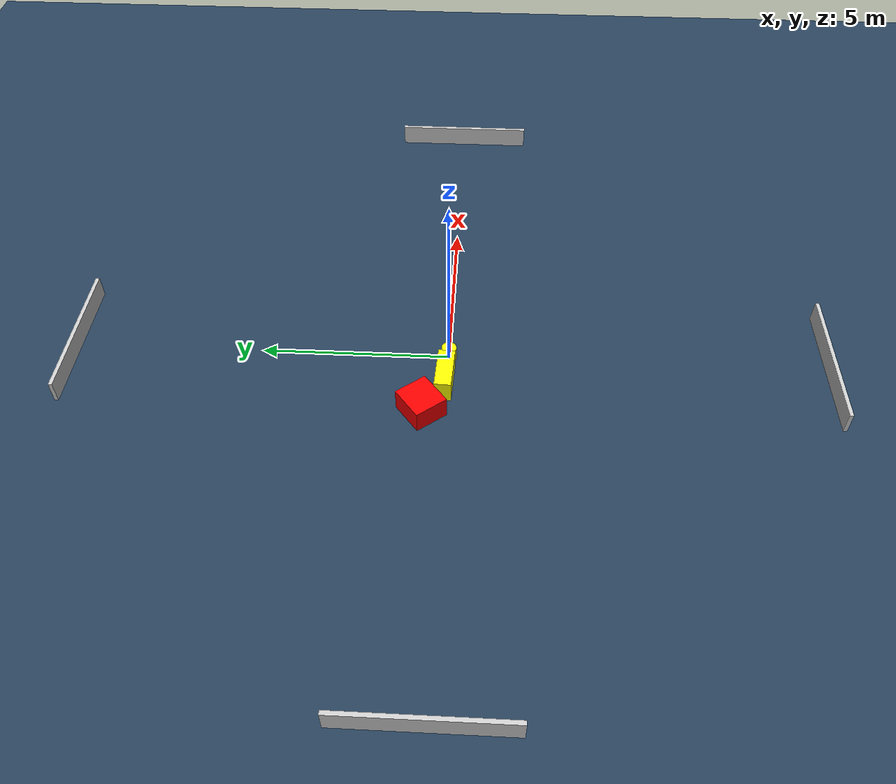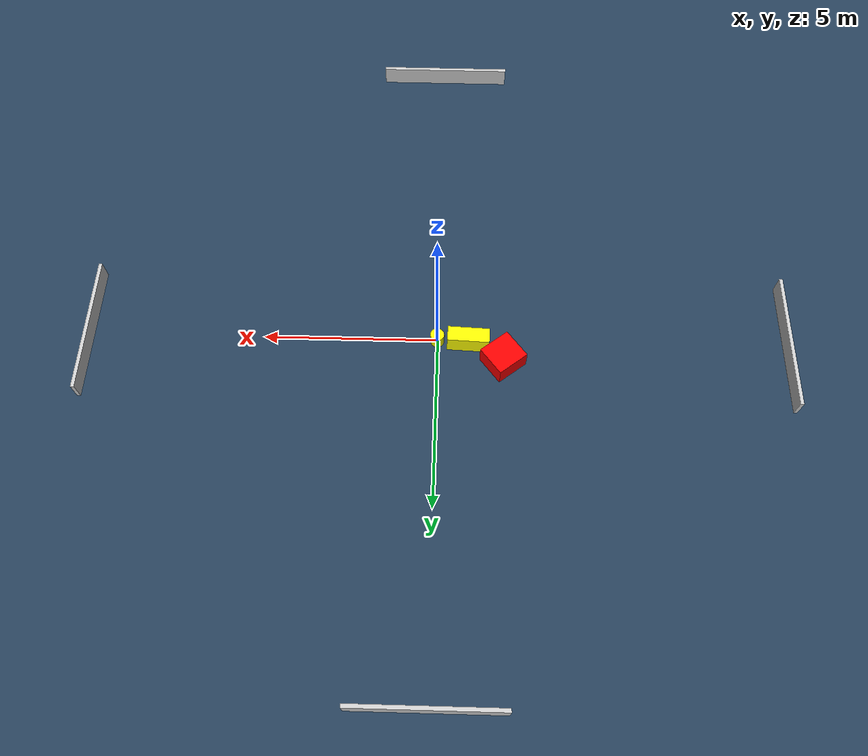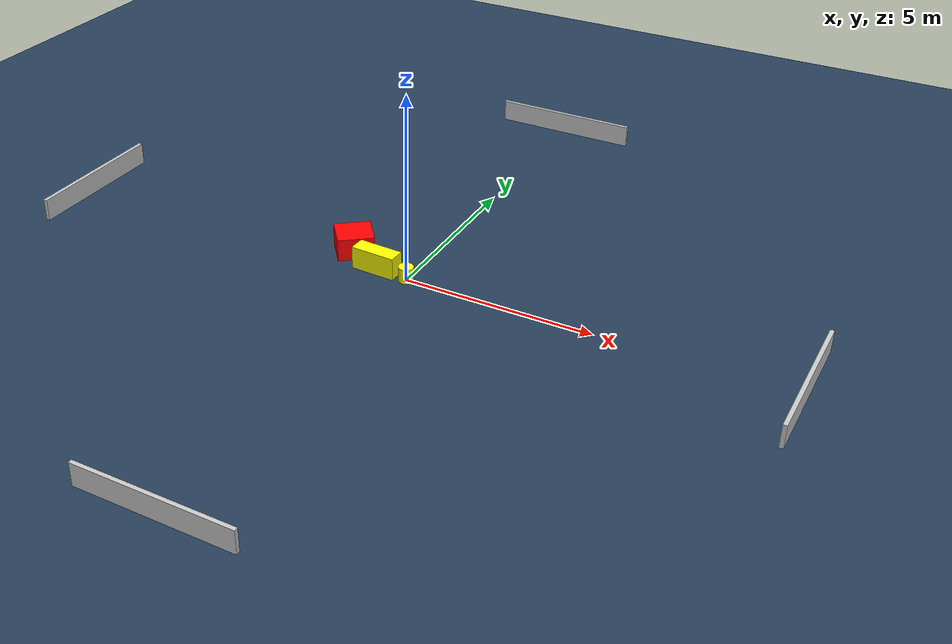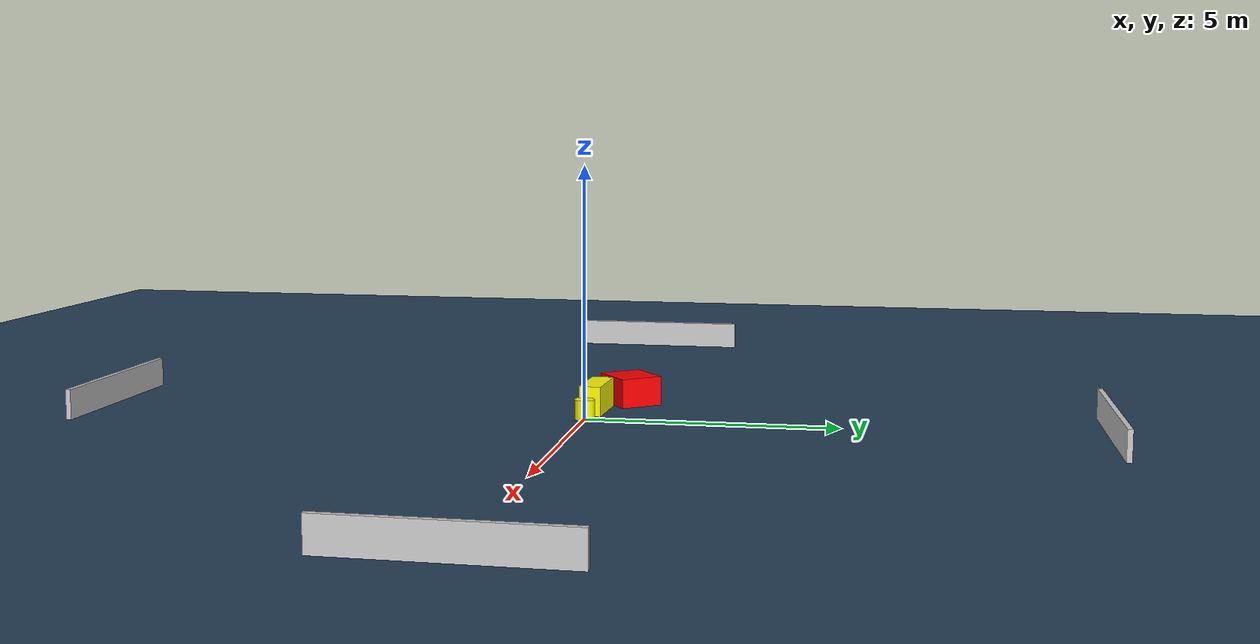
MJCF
<?xml version="1.0" ?>
<mujoco model="generated_environment">
  <option timestep="0.01" integrator="RK4" cone="elliptic"/>
  <default>
    <geom density="1"/>
  </default>
  <asset>
    <texture builtin="gradient" height="3072" name="skybox" rgb1="0.3 0.5 0.7" rgb2="0 0 0" type="skybox" width="512"/>
    <texture builtin="checker" height="300" name="groundplane" rgb1="0.2 0.3 0.4" rgb2="0.1 0.2 0.3" type="2d" width="300"/>
    <material name="groundplane" reflectance="0.2" texrepeat="5 5" texture="groundplane"/>
  </asset>
  <worldbody>
    <light dir="0 0 -1" directional="true" pos="0 0 1.5"/>
    <geom condim="3" friction="0.5 0.005 0.001" material="groundplane" name="floor" pos="0 0 0" size="0 0 0.05" type="plane"/>
    <body name="walls">
      <geom name="wall_1" condim="4" pos="-10.0 0.0 0.3" rgba="0.800000011920929 0.800000011920929 0.800000011920929 1.0" size="0.05 2.0 0.3" type="box"/>
      <geom name="wall_2" condim="4" pos="10.0 0.0 0.3" rgba="0.800000011920929 0.800000011920929 0.800000011920929 1.0" size="0.05 2.0 0.3" type="box"/>
      <geom name="wall_3" condim="4" pos="0.0 -10.0 0.3" rgba="0.800000011920929 0.800000011920929 0.800000011920929 1.0" size="2.0 0.05 0.3" type="box"/>
      <geom name="wall_4" condim="4" pos="0.0 10.0 0.3" rgba="0.800000011920929 0.800000011920929 0.800000011920929 1.0" size="2.0 0.05 0.3" type="box"/>
    </body>
    <body name="robot">
      <joint name="joint_x" type="slide" pos="0 0 0" axis="1 0 0"/>
      <joint name="joint_y" type="slide" pos="0 0 0" axis="0 1 0"/>
      <geom name="robot" type="cylinder" pos="0.0 0.0 0.2" size="0.2 0.2 0.0" mass="5.0" friction="1.0 0.005 0.0001" condim="4" rgba="1.0 1.0 0.0 1.0"/>
    </body>
    <body name="obstacle_1_movable">
      <geom name="obstacle_1_movable" condim="4" pos="-0.8912736187184465 0.07068278260938107 0.3" euler="0 0 87.35926640212644" friction="0.0 0.005 0.001" rgba="1.0 1.0 0.0 1.0" size="0.22041178917964288 0.5993417751461242 0.3" type="box" mass="0.1"/>
      <joint type="free"/>
    </body>
    <body name="obstacle_2_static">
      <geom name="obstacle_2_static" condim="4" pos="-1.8808792663075133 0.6149400749128241 0.3" euler="0 0 38.16560830243177" friction="0.0 0.005 0.001" rgba="1.0 0.0 0.0 1.0" size="0.4809396192575189 0.45345808058358855 0.3" type="box"/>
    </body>
  </worldbody>
  <actuator>
    <motor name="actuator_x" joint="joint_x" gear="1" ctrlrange="-1 1"/>
    <motor name="actuator_y" joint="joint_y" gear="1" ctrlrange="-1 1"/>
  </actuator>
</mujoco>
